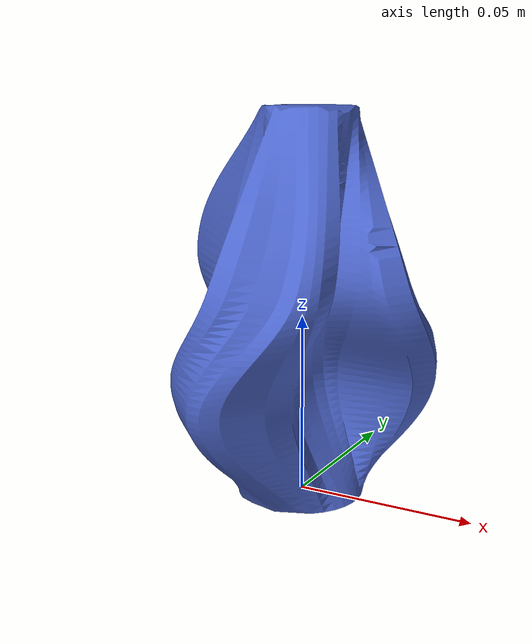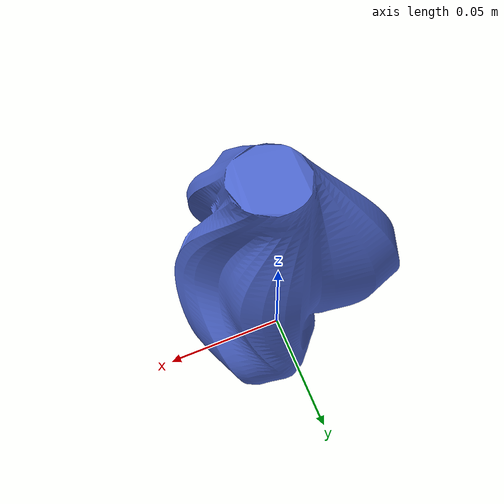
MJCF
<!-- vase.xml -->

<mujoco model="vase">
  <compiler meshdir="assets" />
  <visual>
    <global azimuth="90" elevation="-90"/>
  </visual>
  <default>
    <default class="vase">
      <material specular="0.3" shininess="0.8"/>
      <default class="visual">
        <geom type="mesh" contype="0" conaffinity="0"/>
      </default>
      <default class="collision">
        <geom type="mesh" solref="0.02 1" solimp="0.95 0.99 0.001"/>
      </default>
    </default>
  </default>
  <asset>
    <material name="vase_material" rgba="0.3 0.4 0.8 1"/>
    <mesh name="vase_mesh" file="VASE.stl" scale="1 1 1"/>
  </asset>
  <worldbody>
    <body name="vase_body" childclass="vase" pos="0 0 0">
      <inertial pos="0 0 0" mass="1" diaginertia="0.0016915952363007758 0.0016487379181862394 0.0012223141205998892"/>
      <geom mesh="vase_mesh" material="vase_material" class="visual"/>
      <geom mesh="vase_mesh" material="vase_material" class="collision"/>
    </body>
  </worldbody>
</mujoco>
